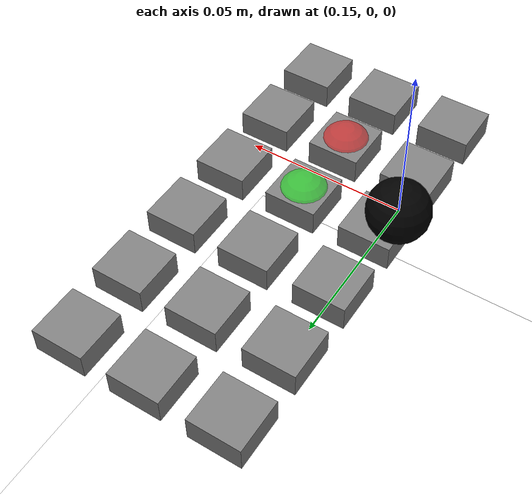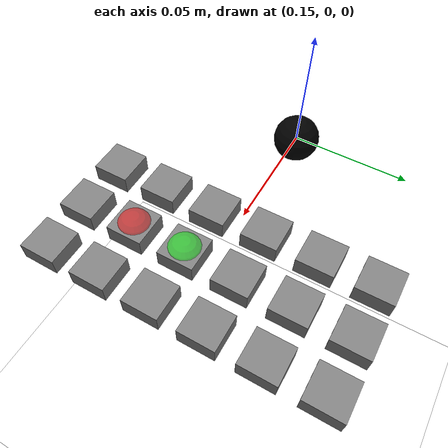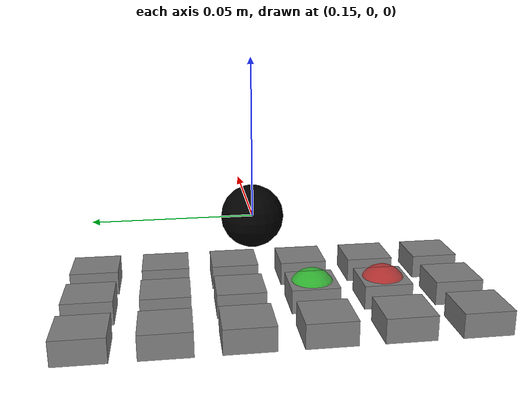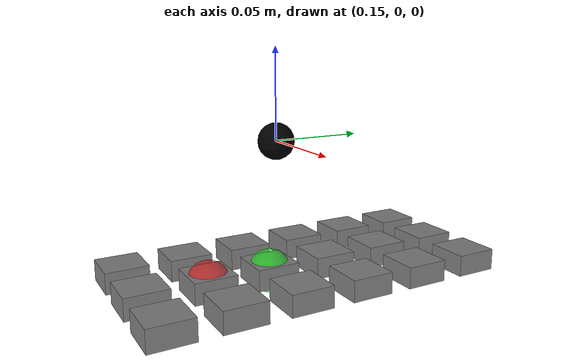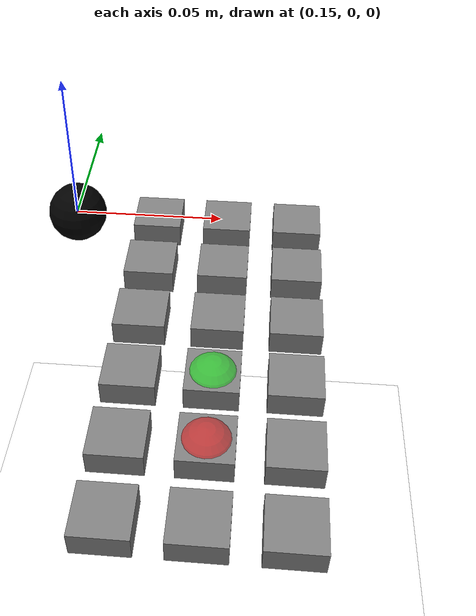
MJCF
<mujoco model="masspoint_scene">
  <statistic center="0.15 0 0" extent="0.4" meansize="0.01"/>

  <visual>
    <headlight diffuse=".8 .8 .8" ambient=".2 .2 .2" specular="1 1 1"/>
    <rgba force="1 0 0 1"/>
    <global azimuth="120" elevation="-20"/>
    <map force="0.01" stiffness="500"/>
    <scale forcewidth="0.1" contactwidth="0.5" contactheight="0.2"/>
    <quality shadowsize="8192"/>
  </visual>

  <asset>
    <texture type="skybox" builtin="gradient" rgb1="1 1 1" rgb2="1 1 1" width="800" height="800"/>
    <texture type="2d" name="groundplane" builtin="checker" mark="edge" rgb1="1 1 1" rgb2="1 1 1" markrgb="0 0 0"
      width="300" height="300"/>
    <material name="groundplane" texture="groundplane" texuniform="true" texrepeat="5 5" reflectance="0"/>
  </asset>

  <worldbody>
    <camera name="side" pos="-0.183 0.396 0.296" xyaxes="-0.783 -0.622 -0.000 0.332 -0.419 0.845"/>
    <geom name="floor" pos="0 0 -0.25" size="0 0 0.01" type="plane" material="groundplane" contype="2" conaffinity="2"/>
    <site name="attachment_site" pos="0 0 0" group="4"/>

    <body name="goal_1_0" mocap="true" pos="0.2 -0.06 -0.05">
      <geom type="sphere" size=".01" mass=".108" contype="0" conaffinity="0" rgba="1 0 0 0.5"/>
    </body>
    <body name="goal_2_0" mocap="true" pos="0.2 -0.03 -0.05">
      <geom type="sphere" size=".01" mass=".108" contype="0" conaffinity="0" rgba="0 1 0 0.5"/>
    </body>

    <body name="key_0" pos="0.17 0.06 -0.05">
        <inertial pos="0.0 -0.0774 0.0" mass=".01" diaginertia="0.001 0.001 0.001"/>
        <joint name="key_joint_0" pos="0.0 0.0 0.0" axis="0 0 1" type="slide" springref=".5" limited="true" stiffness="0.5" range="-0.024 0.0" damping="1"/>
        <geom pos="0.0 -0.00 0.0" size="0.01 0.01 0.005" type="box"/>
    </body>
    <body name="key_1" pos="0.17 0.03 -0.05">
        <inertial pos="0.0 -0.0774 0.0" mass=".01" diaginertia="0.001 0.001 0.001"/>
        <joint name="key_joint_1" pos="0.0 0.0 0.0" axis="0 0 1" type="slide" springref=".5" limited="true" stiffness="0.5" range="-0.024 0.0" damping="1"/>
        <geom pos="0.0 -0.00 0.0" size="0.01 0.01 0.005" type="box"/>
    </body>
    <body name="key_2" pos="0.17 0.00 -0.05">
        <inertial pos="0.0 -0.0774 0.0" mass=".01" diaginertia="0.001 0.001 0.001"/>
        <joint name="key_joint_2" pos="0.0 0.0 0.0" axis="0 0 1" type="slide" springref=".5" limited="true" stiffness="0.5" range="-0.024 0.0" damping="1"/>
        <geom pos="0.0 -0.00 0.0" size="0.01 0.01 0.005" type="box"/>
    </body>
    <body name="key_3" pos="0.17 -0.03 -0.05">
        <inertial pos="0.0 -0.0774 0.0" mass=".01" diaginertia="0.001 0.001 0.001"/>
        <joint name="key_joint_3" pos="0.0 0.0 0.0" axis="0 0 1" type="slide" springref=".5" limited="true" stiffness="0.5" range="-0.024 0.0" damping="1"/>
        <geom pos="0.0 -0.00 0.0" size="0.01 0.01 0.005" type="box"/>
    </body>
    <body name="key_4" pos="0.17 -0.06 -0.05">
        <inertial pos="0.0 -0.0774 0.0" mass=".01" diaginertia="0.001 0.001 0.001"/>
        <joint name="key_joint_4" pos="0.0 0.0 0.0" axis="0 0 1" type="slide" springref=".5" limited="true" stiffness="0.5" range="-0.024 0.0" damping="1"/>
        <geom pos="0.0 -0.00 0.0" size="0.01 0.01 0.005" type="box"/>
    </body>
    <body name="key_5" pos="0.17 -0.09 -0.05">
        <inertial pos="0.0 -0.0774 0.0" mass=".01" diaginertia="0.001 0.001 0.001"/>
        <joint name="key_joint_5" pos="0.0 0.0 0.0" axis="0 0 1" type="slide" springref=".5" limited="true" stiffness="0.5" range="-0.024 0.0" damping="1"/>
        <geom pos="0.0 -0.00 0.0" size="0.01 0.01 0.005" type="box"/>
    </body>
    <body name="key_6" pos="0.2 0.06 -0.05">
        <inertial pos="0.0 -0.0774 0.0" mass=".01" diaginertia="0.001 0.001 0.001"/>
        <joint name="key_joint_6" pos="0.0 0.0 0.0" axis="0 0 1" type="slide" springref=".5" limited="true" stiffness="0.5" range="-0.024 0.0" damping="1"/>
        <geom pos="0.0 -0.00 0.0" size="0.01 0.01 0.005" type="box"/>
    </body>
    <body name="key_7" pos="0.2 0.03 -0.05">
        <inertial pos="0.0 -0.0774 0.0" mass=".01" diaginertia="0.001 0.001 0.001"/>
        <joint name="key_joint_7" pos="0.0 0.0 0.0" axis="0 0 1" type="slide" springref=".5" limited="true" stiffness="0.5" range="-0.024 0.0" damping="1"/>
        <geom pos="0.0 -0.00 0.0" size="0.01 0.01 0.005" type="box"/>
    </body>

    <body name="key_8" pos="0.2 0.0 -0.05">
        <inertial pos="0.0 -0.0774 0.0" mass=".01" diaginertia="0.001 0.001 0.001"/>
        <joint name="key_joint_8" pos="0.0 0.0 0.0" axis="0 0 1" type="slide" springref=".5" limited="true" stiffness="0.5" range="-0.024 0.0" damping="1"/>
        <geom pos="0.0 -0.00 0.0" size="0.01 0.01 0.005" type="box"/>
    </body>
    <body name="key_9" pos="0.2 -0.03 -0.05">
        <inertial pos="0.0 -0.0774 0.0" mass=".01" diaginertia="0.001 0.001 0.001"/>
        <joint name="key_joint_9" pos="0.0 0.0 0.0" axis="0 0 1" type="slide" springref=".5" limited="true" stiffness="0.5" range="-0.024 0.0" damping="1"/>
        <geom pos="0.0 -0.00 0.0" size="0.01 0.01 0.005" type="box"/>
    </body>

    <body name="key_10" pos="0.2 -0.06 -0.05">
        <inertial pos="0.0 -0.0774 0.0" mass=".01" diaginertia="0.001 0.001 0.001"/>
        <joint name="key_joint_10" pos="0.0 0.0 0.0" axis="0 0 1" type="slide" springref=".5" limited="true" stiffness="0.5" range="-0.024 0.0" damping="1"/>
        <geom pos="0.0 -0.00 0.0" size="0.01 0.01 0.005" type="box"/>
    </body>
    <body name="key_11" pos="0.2 -0.09 -0.05">
        <inertial pos="0.0 -0.0774 0.0" mass=".01" diaginertia="0.001 0.001 0.001"/>
        <joint name="key_joint_11" pos="0.0 0.0 0.0" axis="0 0 1" type="slide" springref=".5" limited="true" stiffness="0.5" range="-0.024 0.0" damping="1"/>
        <geom pos="0.0 -0.00 0.0" size="0.01 0.01 0.005" type="box"/>
    </body>

    <body name="key_12" pos="0.23 0.06 -0.05">
        <inertial pos="0.0 -0.0774 0.0" mass=".01" diaginertia="0.001 0.001 0.001"/>
        <joint name="key_joint_12" pos="0.0 0.0 0.0" axis="0 0 1" type="slide" springref=".5" limited="true" stiffness="0.5" range="-0.024 0.0" damping="1"/>
        <geom pos="0.0 -0.00 0.0" size="0.01 0.01 0.005" type="box"/>
    </body>
    <body name="key_13" pos="0.23 0.03 -0.05">
        <inertial pos="0.0 -0.0774 0.0" mass=".01" diaginertia="0.001 0.001 0.001"/>
        <joint name="key_joint_13" pos="0.0 0.0 0.0" axis="0 0 1" type="slide" springref=".5" limited="true" stiffness="0.5" range="-0.024 0.0" damping="1"/>
        <geom pos="0.0 -0.00 0.0" size="0.01 0.01 0.005" type="box"/>
    </body>
    <body name="key_14" pos="0.23 0.00 -0.05">
        <inertial pos="0.0 -0.0774 0.0" mass=".01" diaginertia="0.001 0.001 0.001"/>
        <joint name="key_joint_14" pos="0.0 0.0 0.0" axis="0 0 1" type="slide" springref=".5" limited="true" stiffness="0.5" range="-0.024 0.0" damping="1"/>
        <geom pos="0.0 -0.00 0.0" size="0.01 0.01 0.005" type="box"/>
    </body>
    <body name="key_15" pos="0.23 -0.03 -0.05">
        <inertial pos="0.0 -0.0774 0.0" mass=".01" diaginertia="0.001 0.001 0.001"/>
        <joint name="key_joint_15" pos="0.0 0.0 0.0" axis="0 0 1" type="slide" springref=".5" limited="true" stiffness="0.5" range="-0.024 0.0" damping="1"/>
        <geom pos="0.0 -0.00 0.0" size="0.01 0.01 0.005" type="box"/>
    </body>

    <body name="key_16" pos="0.23 -0.06 -0.05">
        <inertial pos="0.0 -0.0774 0.0" mass=".01" diaginertia="0.001 0.001 0.001"/>
        <joint name="key_joint_16" pos="0.0 0.0 0.0" axis="0 0 1" type="slide" springref=".5" limited="true" stiffness="0.5" range="-0.024 0.0" damping="1"/>
        <geom pos="0.0 -0.00 0.0" size="0.01 0.01 0.005" type="box"/>
    </body>

    <body name="key_17" pos="0.23 -0.09 -0.05">
        <inertial pos="0.0 -0.0774 0.0" mass=".01" diaginertia="0.001 0.001 0.001"/>
        <joint name="key_joint_17" pos="0.0 0.0 0.0" axis="0 0 1" type="slide" springref=".5" limited="true" stiffness="0.5" range="-0.024 0.0" damping="1"/>
        <geom pos="0.0 -0.00 0.0" size="0.01 0.01 0.005" type="box"/>
    </body>

    <body name="mp_0" pos="0.15 0.0 0.0">
        <inertial pos="0.0 -0.0774 0.0" mass=".01" diaginertia="0.001 0.001 0.001"/>
        <joint name="mp_0_joint_0" pos="0.0 0.0 0.0" axis="1 0 0" type="slide" springref=".0" limited="true" stiffness="0.5" range="-0.0 0.1" damping="1"/>
        <joint name="mp_0_joint_1" pos="0.0 0.0 0.0" axis="0 1 0" type="slide" springref=".0" limited="true" stiffness="0.5" range="-0.12 0.1" damping="1"/>
        <joint name="mp_0_joint_2" pos="0.0 0.0 0.0" axis="0 0 1" type="slide" springref=".0" limited="true" stiffness="0.5" range="-0.06 0.0" damping="1"/>
        <geom rgba="0 0 0 1" pos="0.0 -0.00 0.0" size="0.01 0.01 0.005" type="sphere"/>
        <site name="mp_0_tip" pos="0 0 0.0255" group="4"/>
    </body>

    <body name="mp_1" pos="0.15 0.0 0.0">
        <inertial pos="0.0 -0.0774 0.0" mass=".01" diaginertia="0.001 0.001 0.001"/>
        <joint name="mp_1_joint_0" pos="0.0 0.0 0.0" axis="1 0 0" type="slide" springref=".0" limited="true" stiffness="0.5" range="-0.0 0.1" damping="1"/>
        <joint name="mp_1_joint_1" pos="0.0 0.0 0.0" axis="0 1 0" type="slide" springref=".0" limited="true" stiffness="0.5" range="-0.12 0.1" damping="1"/>
        <joint name="mp_1_joint_2" pos="0.0 0.0 0.0" axis="0 0 1" type="slide" springref=".0" limited="true" stiffness="0.5" range="-0.06 0.0" damping="1"/>
        <geom rgba="1 1 1 1" pos="0.0 -0.00 0.0" size="0.01 0.01 0.005" type="sphere"/>
        <site name="mp_1_tip" pos="0 0 0.0255" group="4"/>
    </body>

  </worldbody>

  <sensor>
    <!-- hand. -->
    <framepos name="mp_0_tip_position" objtype="site" objname="mp_0_tip"/>
    <framepos name="mp_1_tip_position" objtype="site" objname="mp_1_tip"/>

    <!-- goal. -->
  </sensor>

  <actuator>
    <position kp="5" kv="2" name="mp_0_joint_0_a" joint="mp_0_joint_0" ctrlrange="-0.05 0.1"/>
    <position kp="5" kv="2" name="mp_0_joint_1_a" joint="mp_0_joint_1" ctrlrange="-0.12 0.1"/>
    <position kp="5" kv="2" name="mp_0_joint_2_a" joint="mp_0_joint_2" ctrlrange="-0.2 0.0"/>

    <position kp="5" kv="1" name="mp_1_joint_0_a" joint="mp_1_joint_0" ctrlrange="-0.05 0.1"/>
    <position kp="5" kv="1" name="mp_1_joint_1_a" joint="mp_1_joint_1" ctrlrange="-0.12 0.1"/>
    <position kp="5" kv="1" name="mp_1_joint_2_a" joint="mp_1_joint_2" ctrlrange="-0.2 0.0"/>
  </actuator>

  <contact>
    <exclude body1="key_0" body2="key_1"/>
    <exclude body1="key_0" body2="key_2"/>
    <exclude body1="key_0" body2="key_3"/>
    <exclude body1="key_0" body2="key_4"/>
    <exclude body1="key_0" body2="key_5"/>
    <exclude body1="key_0" body2="key_6"/>
    <exclude body1="key_0" body2="key_7"/>

    <exclude body1="key_1" body2="key_2"/>
    <exclude body1="key_1" body2="key_3"/>
    <exclude body1="key_1" body2="key_4"/>
    <exclude body1="key_1" body2="key_5"/>
    <exclude body1="key_1" body2="key_6"/>
    <exclude body1="key_1" body2="key_7"/>

    <exclude body1="key_2" body2="key_3"/>
    <exclude body1="key_2" body2="key_4"/>
    <exclude body1="key_2" body2="key_5"/>
    <exclude body1="key_2" body2="key_6"/>
    <exclude body1="key_2" body2="key_7"/>

    <exclude body1="key_3" body2="key_4"/>
    <exclude body1="key_3" body2="key_5"/>
    <exclude body1="key_3" body2="key_6"/>
    <exclude body1="key_3" body2="key_7"/>

    <exclude body1="key_4" body2="key_5"/>
    <exclude body1="key_4" body2="key_6"/>
    <exclude body1="key_4" body2="key_7"/>

    <exclude body1="key_5" body2="key_6"/>
    <exclude body1="key_5" body2="key_7"/>

    <exclude body1="key_6" body2="key_7"/>
  </contact>

  <keyframe>
    <key name="home"
      qpos="0 -0.1 0 0 0 0"
      ctrl="0 -0.1 0 0 0 0"/>
  </keyframe>
</mujoco>
